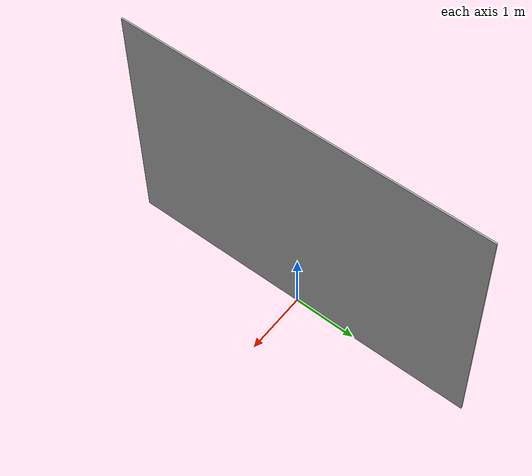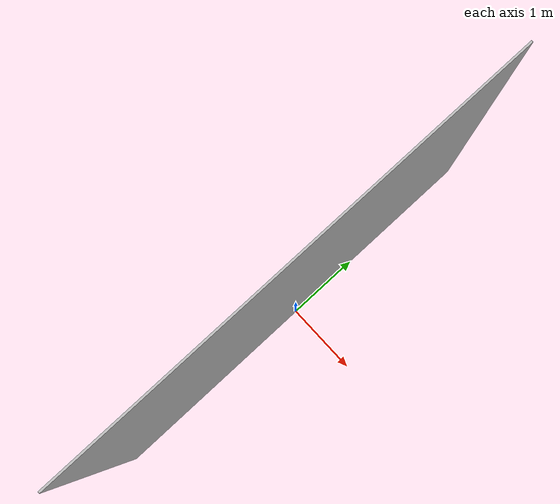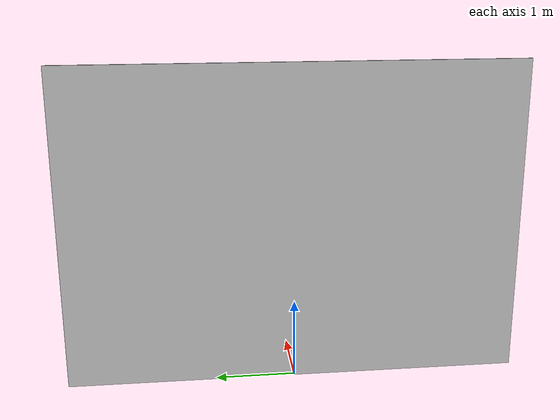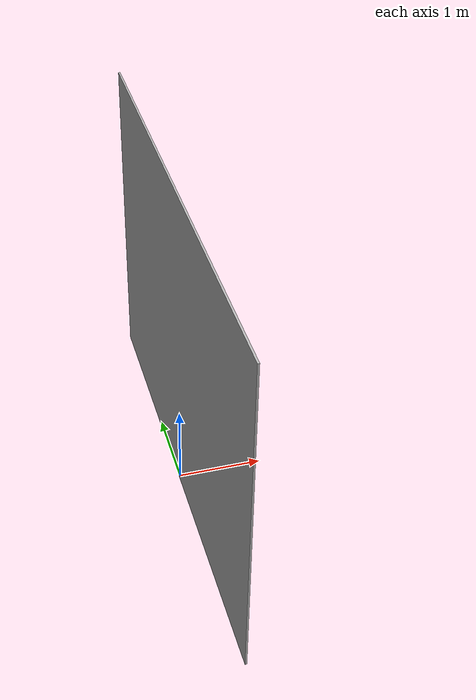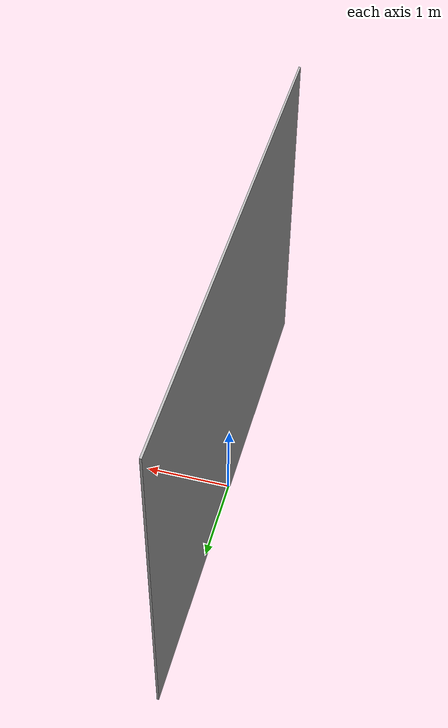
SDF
<?xml version="1.0"?>
<sdf version="1.4">
  <model name="cathedral_background">
    <pose>0 0 1.0 0 0 0</pose>
    <static>true</static>
    <link name="cathedral_background">
      <inertial>
        <pose>0 0 1.0 0 0 0</pose>
        <mass>20.0</mass>
        <inertia>
          <ixx>0.00055575</ixx>
          <ixy>0</ixy>
          <ixz>0</ixz>
          <iyy>0.00055575</iyy>
          <iyz>0</iyz>
          <izz>0.0001755</izz>
        </inertia>
      </inertial>
      <collision name="collision">
        <pose>0 0 1.0 0 0 0</pose>
        <geometry>
          <mesh>
            <uri>model://cathedral_background/meshes/cathedral_background.dae</uri>
          </mesh>
        </geometry>
        <surface>
          <friction>
            <ode>
              <mu>1.0</mu>
              <mu2>1.0</mu2>
            </ode>
          </friction>
          <contact>
            <ode>
              <kp>10000000.0</kp>
              <kd>1.0</kd>
              <min_depth>0.001</min_depth>
              <max_vel>0.1</max_vel>
            </ode>
          </contact>
        </surface>
      </collision>
      <visual name="visual">
        <pose>0 0 1.0 0 0 0</pose>
        <geometry>
          <mesh>
            <uri>model://cathedral_background/meshes/cathedral_background.dae</uri>
          </mesh>
        </geometry>
      </visual>
    </link>
  </model>
</sdf>
